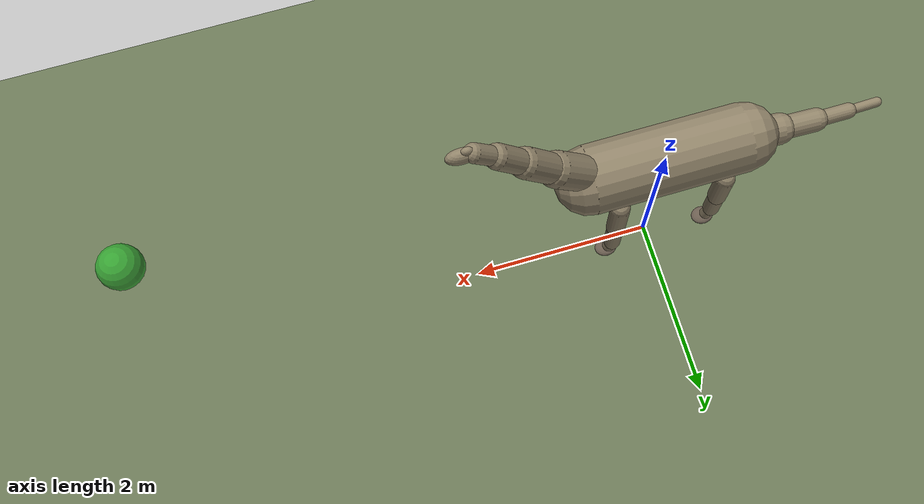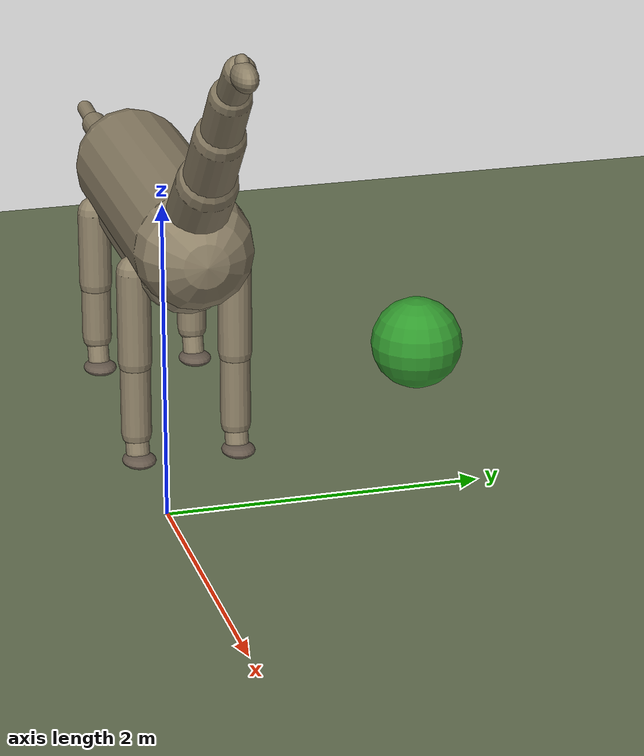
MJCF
<mujoco model="brachiosaurus">
  <compiler angle="degree" autolimits="true"/>

  <option timestep="0.002" gravity="0 0 -9.81" integrator="implicitfast">
    <flag warmstart="enable"/>
  </option>

  <default>
    <joint limited="true" damping="10.0" armature="0.05"/>
    <geom contype="1" conaffinity="1" friction="1.2 0.005 0.0001"/>
    <motor ctrllimited="true" ctrlrange="-1 1"/>

    <default class="leg_joint">
      <joint damping="35.0" stiffness="120.0" armature="0.1"/>
    </default>

    <!-- Metatarsal joints: semi-digitigrade stance -->
    <default class="meta_joint">
      <joint damping="25.0" stiffness="80.0" armature="0.08"/>
    </default>

    <!-- Neck joints: passive stiffness to counteract gravity on heavy neck.
         Increased from 30 to 50 to prevent neck collapse during locomotion. -->
    <default class="neck_joint">
      <joint damping="12.0" stiffness="50.0" armature="0.05" range="-25 25"/>
    </default>

    <!-- Tail joints: increased stiffness/damping for active control.
         Proximal segments actuated; distal remain passive. -->
    <default class="tail_joint">
      <joint damping="15.0" stiffness="30.0" armature="0.04" range="-15 25"/>
    </default>
  </default>

  <asset>
    <texture type="skybox" builtin="gradient" rgb1="0.6 0.8 1.0" rgb2="0.2 0.4 0.6"
             width="256" height="256"/>
    <texture name="grid" type="2d" builtin="checker" rgb1="0.45 0.5 0.35" rgb2="0.35 0.4 0.3"
             width="512" height="512"/>
    <material name="grid_mat" texture="grid" texrepeat="8 8" reflectance="0.1"/>
    <material name="body_mat" rgba="0.55 0.5 0.4 1"/>
    <material name="belly_mat" rgba="0.6 0.55 0.45 1"/>
    <material name="foot_mat" rgba="0.4 0.35 0.3 1"/>
  </asset>

  <worldbody>
    <!-- Ground plane -->
    <geom name="floor" type="plane" size="100 100 0.1" material="grid_mat"
          conaffinity="1" contype="1"/>

    <!-- Food target (mocap body - can be repositioned) -->
    <body name="food" mocap="true" pos="5 0 3.0">
      <geom name="food_geom" type="sphere" size="0.2" rgba="0.2 0.7 0.2 0.8"
            contype="2" conaffinity="2"/>
    </body>

    <!-- ==================== BRACHIOSAURUS BODY ==================== -->

    <body name="torso" pos="0 0 2.0">
      <freejoint name="root"/>

      <!-- Main torso: barrel-shaped body -->
      <geom name="torso_main" type="capsule" fromto="-0.8 0 0  0.8 0 0" size="0.35"
            mass="60.0" material="body_mat"/>

      <!-- Belly (cosmetic, adds mass lower) -->
      <geom name="belly" type="capsule" fromto="-0.6 0 -0.15  0.6 0 -0.15" size="0.3"
            mass="20.0" material="belly_mat"/>

      <!-- IMU sensor site -->
      <site name="imu" pos="0 0 0" size="0.03"/>

      <!-- ==================== NECK ==================== -->
      <!-- 4 segments, angled upward (Brachiosaurus had a steep neck angle) -->

      <body name="neck_1" pos="0.8 0 0.15">
        <joint name="neck_1_pitch" class="neck_joint" type="hinge" axis="0 1 0" range="-20 30"/>
        <joint name="neck_1_yaw" class="neck_joint" type="hinge" axis="0 0 1" range="-15 15"/>
        <geom name="neck_1_geom" type="capsule" fromto="0 0 0  0.35 0 0.35" size="0.18"
              mass="8.0" material="body_mat" contype="0" conaffinity="0"/>

        <body name="neck_2" pos="0.35 0 0.35">
          <joint name="neck_2_pitch" class="neck_joint" type="hinge" axis="0 1 0" range="-20 25"/>
          <geom name="neck_2_geom" type="capsule" fromto="0 0 0  0.3 0 0.35" size="0.15"
                mass="6.0" material="body_mat" contype="0" conaffinity="0"/>

          <body name="neck_3" pos="0.3 0 0.35">
            <joint name="neck_3_pitch" class="neck_joint" type="hinge" axis="0 1 0" range="-25 25"/>
            <geom name="neck_3_geom" type="capsule" fromto="0 0 0  0.25 0 0.3" size="0.12"
                  mass="4.0" material="body_mat" contype="0" conaffinity="0"/>

            <body name="neck_4" pos="0.25 0 0.3">
              <joint name="neck_4_pitch" class="neck_joint" type="hinge" axis="0 1 0" range="-30 30"/>
              <geom name="neck_4_geom" type="capsule" fromto="0 0 0  0.2 0 0.2" size="0.09"
                    mass="2.5" material="body_mat" contype="0" conaffinity="0"/>

              <!-- Head -->
              <body name="head" pos="0.2 0 0.2">
                <joint name="head_pitch" class="neck_joint" type="hinge" axis="0 1 0" range="-40 40"/>
                <geom name="head_geom" type="ellipsoid" pos="0.1 0 0" size="0.15 0.07 0.08"
                      mass="1.5" material="body_mat"/>
                <!-- Nasal crest -->
                <geom name="crest" type="ellipsoid" pos="0.05 0 0.06" size="0.06 0.04 0.05"
                      mass="0.3" material="body_mat" contype="0" conaffinity="0"/>
                <!-- Head tip site for food reaching detection -->
                <site name="head_tip" pos="0.2 0 0" size="0.02"/>
              </body>
            </body>
          </body>
        </body>
      </body>

      <!-- ==================== TAIL ==================== -->
      <!-- 4 segments, relatively short for a sauropod -->

      <body name="tail_1" pos="-0.8 0 0">
        <joint name="tail_1_pitch" class="tail_joint" type="hinge" axis="0 1 0"/>
        <joint name="tail_1_yaw" class="tail_joint" type="hinge" axis="0 0 1" range="-10 10"/>
        <geom name="tail_1_geom" type="capsule" fromto="0 0 0  -0.4 0 -0.05" size="0.16"
              mass="6.0" material="body_mat"/>

        <body name="tail_2" pos="-0.4 0 -0.05">
          <joint name="tail_2_pitch" class="tail_joint" type="hinge" axis="0 1 0"/>
          <geom name="tail_2_geom" type="capsule" fromto="0 0 0  -0.4 0 -0.03" size="0.12"
                mass="4.0" material="body_mat"/>

          <body name="tail_3" pos="-0.4 0 -0.03">
            <joint name="tail_3_pitch" class="tail_joint" type="hinge" axis="0 1 0"/>
            <geom name="tail_3_geom" type="capsule" fromto="0 0 0  -0.35 0 0" size="0.08"
                  mass="2.0" material="body_mat"/>

            <body name="tail_4" pos="-0.35 0 0">
              <joint name="tail_4_pitch" class="tail_joint" type="hinge" axis="0 1 0"/>
              <geom name="tail_4_geom" type="capsule" fromto="0 0 0  -0.3 0 0.02" size="0.05"
                    mass="1.0" material="body_mat"/>
              <site name="tail_tip" pos="-0.3 0 0.02" size="0.02"/>
            </body>
          </body>
        </body>
      </body>

      <!-- ==================== FRONT RIGHT LEG ==================== -->
      <!-- Brachiosaurus front legs are longer than rear (unique feature) -->
      <!-- Semi-digitigrade stance: metacarpals held sub-vertically with
           a fleshy pad at the base. The manus is compact (short metacarpal). -->

      <body name="fr_thigh" pos="0.55 -0.3 -0.2">
        <joint name="fr_hip_pitch" class="leg_joint" type="hinge" axis="0 1 0" range="-40 50"/>
        <joint name="fr_hip_roll" class="leg_joint" type="hinge" axis="1 0 0" range="-10 10"/>
        <geom name="fr_thigh_geom" type="capsule" fromto="0 0 0  0 0 -0.55" size="0.1"
              mass="8.0" material="body_mat"/>

        <body name="fr_shin" pos="0 0 -0.55">
          <joint name="fr_knee" class="leg_joint" type="hinge" axis="0 1 0" range="-60 0" springref="-45"/>
          <geom name="fr_shin_geom" type="capsule" fromto="0 0 0  0 0 -0.45" size="0.09"
                mass="5.0" material="body_mat"/>

          <!-- Metacarpus: short, sub-vertical (sauropod manus was compact) -->
          <body name="fr_meta" pos="0 0 -0.45">
            <joint name="fr_ankle" class="meta_joint" type="hinge" axis="0 1 0" range="-20 40" springref="20"/>
            <geom name="fr_meta_geom" type="capsule" fromto="0 0 0  0.03 0 -0.12" size="0.07"
                  mass="1.5" material="body_mat"/>
            <site name="fr_meta_contact" type="box" pos="0.03 0 -0.14" size="0.11 0.10 0.06" group="4"/>

            <!-- Foot pad: fleshy digital pad at ground contact -->
            <body name="fr_foot" pos="0.03 0 -0.12">
              <joint name="fr_toe" class="meta_joint" type="hinge" axis="0 1 0" range="-15 25" springref="5.7"/>
              <geom name="fr_foot_geom" type="ellipsoid" pos="0.03 0 -0.03" size="0.12 0.1 0.04"
                    mass="1.5" material="foot_mat"/>
              <site name="fr_foot_contact" type="box" pos="0.03 0 -0.05" size="0.14 0.12 0.035" group="4"/>
            </body>
          </body>
        </body>
      </body>

      <!-- ==================== FRONT LEFT LEG ==================== -->

      <body name="fl_thigh" pos="0.55 0.3 -0.2">
        <joint name="fl_hip_pitch" class="leg_joint" type="hinge" axis="0 1 0" range="-40 50"/>
        <joint name="fl_hip_roll" class="leg_joint" type="hinge" axis="1 0 0" range="-10 10"/>
        <geom name="fl_thigh_geom" type="capsule" fromto="0 0 0  0 0 -0.55" size="0.1"
              mass="8.0" material="body_mat"/>

        <body name="fl_shin" pos="0 0 -0.55">
          <joint name="fl_knee" class="leg_joint" type="hinge" axis="0 1 0" range="-60 0" springref="-45"/>
          <geom name="fl_shin_geom" type="capsule" fromto="0 0 0  0 0 -0.45" size="0.09"
                mass="5.0" material="body_mat"/>

          <body name="fl_meta" pos="0 0 -0.45">
            <joint name="fl_ankle" class="meta_joint" type="hinge" axis="0 1 0" range="-20 40" springref="20"/>
            <geom name="fl_meta_geom" type="capsule" fromto="0 0 0  0.03 0 -0.12" size="0.07"
                  mass="1.5" material="body_mat"/>
            <site name="fl_meta_contact" type="box" pos="0.03 0 -0.14" size="0.11 0.10 0.06" group="4"/>

            <body name="fl_foot" pos="0.03 0 -0.12">
              <joint name="fl_toe" class="meta_joint" type="hinge" axis="0 1 0" range="-15 25" springref="5.7"/>
              <geom name="fl_foot_geom" type="ellipsoid" pos="0.03 0 -0.03" size="0.12 0.1 0.04"
                    mass="1.5" material="foot_mat"/>
              <site name="fl_foot_contact" type="box" pos="0.03 0 -0.05" size="0.14 0.12 0.035" group="4"/>
            </body>
          </body>
        </body>
      </body>

      <!-- ==================== REAR RIGHT LEG ==================== -->
      <!-- Rear legs shorter than front (characteristic of Brachiosaurus) -->
      <!-- Semi-digitigrade stance: metatarsals longer than front metacarpals -->

      <body name="rr_thigh" pos="-0.55 -0.3 -0.2">
        <joint name="rr_hip_pitch" class="leg_joint" type="hinge" axis="0 1 0" range="-40 50"/>
        <joint name="rr_hip_roll" class="leg_joint" type="hinge" axis="1 0 0" range="-10 10"/>
        <geom name="rr_thigh_geom" type="capsule" fromto="0 0 0  0 0 -0.45" size="0.1"
              mass="7.0" material="body_mat"/>

        <body name="rr_shin" pos="0 0 -0.45">
          <joint name="rr_knee" class="leg_joint" type="hinge" axis="0 1 0" range="-60 0" springref="-10"/>
          <geom name="rr_shin_geom" type="capsule" fromto="0 0 0  0 0 -0.35" size="0.09"
                mass="4.0" material="body_mat"/>

          <!-- Metatarsus: longer than front metacarpus (hind foot digitigrade) -->
          <body name="rr_meta" pos="0 0 -0.35">
            <joint name="rr_ankle" class="meta_joint" type="hinge" axis="0 1 0" range="-20 40" springref="20"/>
            <geom name="rr_meta_geom" type="capsule" fromto="0 0 0  0.04 0 -0.15" size="0.065"
                  mass="1.5" material="body_mat"/>
            <site name="rr_meta_contact" type="box" pos="0.04 0 -0.17" size="0.11 0.10 0.07" group="4"/>

            <body name="rr_foot" pos="0.04 0 -0.15">
              <joint name="rr_toe" class="meta_joint" type="hinge" axis="0 1 0" range="-15 25" springref="5.7"/>
              <geom name="rr_foot_geom" type="ellipsoid" pos="0.03 0 -0.03" size="0.12 0.1 0.04"
                    mass="1.5" material="foot_mat"/>
              <site name="rr_foot_contact" type="box" pos="0.03 0 -0.05" size="0.14 0.12 0.035" group="4"/>
            </body>
          </body>
        </body>
      </body>

      <!-- ==================== REAR LEFT LEG ==================== -->

      <body name="rl_thigh" pos="-0.55 0.3 -0.2">
        <joint name="rl_hip_pitch" class="leg_joint" type="hinge" axis="0 1 0" range="-40 50"/>
        <joint name="rl_hip_roll" class="leg_joint" type="hinge" axis="1 0 0" range="-10 10"/>
        <geom name="rl_thigh_geom" type="capsule" fromto="0 0 0  0 0 -0.45" size="0.1"
              mass="7.0" material="body_mat"/>

        <body name="rl_shin" pos="0 0 -0.45">
          <joint name="rl_knee" class="leg_joint" type="hinge" axis="0 1 0" range="-60 0" springref="-10"/>
          <geom name="rl_shin_geom" type="capsule" fromto="0 0 0  0 0 -0.35" size="0.09"
                mass="4.0" material="body_mat"/>

          <body name="rl_meta" pos="0 0 -0.35">
            <joint name="rl_ankle" class="meta_joint" type="hinge" axis="0 1 0" range="-20 40" springref="20"/>
            <geom name="rl_meta_geom" type="capsule" fromto="0 0 0  0.04 0 -0.15" size="0.065"
                  mass="1.5" material="body_mat"/>
            <site name="rl_meta_contact" type="box" pos="0.04 0 -0.17" size="0.11 0.10 0.07" group="4"/>

            <body name="rl_foot" pos="0.04 0 -0.15">
              <joint name="rl_toe" class="meta_joint" type="hinge" axis="0 1 0" range="-15 25" springref="5.7"/>
              <geom name="rl_foot_geom" type="ellipsoid" pos="0.03 0 -0.03" size="0.12 0.1 0.04"
                    mass="1.5" material="foot_mat"/>
              <site name="rl_foot_contact" type="box" pos="0.03 0 -0.05" size="0.14 0.12 0.035" group="4"/>
            </body>
          </body>
        </body>
      </body>

    </body> <!-- end torso -->
  </worldbody>

  <!-- ==================== ACTUATORS ==================== -->
  <!-- Position actuators for locomotion, high kp for heavy body -->

  <actuator>
    <!-- NOTE: ctrlrange must be in radians — the compiler angle="degree" setting
         does NOT convert actuator attributes, only joint attributes. -->

    <!-- Neck control (5 joints: 4 pitch + 1 yaw on base) -->
    <position name="neck_1_pitch_act" joint="neck_1_pitch" kp="240" forcerange="-160 160" ctrlrange="-0.3491 0.5236"/>
    <position name="neck_1_yaw_act" joint="neck_1_yaw" kp="160" forcerange="-110 110" ctrlrange="-0.2618 0.2618"/>
    <position name="neck_2_pitch_act" joint="neck_2_pitch" kp="200" forcerange="-140 140" ctrlrange="-0.3491 0.4363"/>
    <position name="neck_3_pitch_act" joint="neck_3_pitch" kp="160" forcerange="-110 110" ctrlrange="-0.4363 0.4363"/>
    <position name="neck_4_pitch_act" joint="neck_4_pitch" kp="120" forcerange="-80 80" ctrlrange="-0.5236 0.5236"/>
    <position name="head_pitch_act" joint="head_pitch" kp="80" forcerange="-55 55" ctrlrange="-0.6981 0.6981"/>

    <!-- Front right leg (5 actuators: hip pitch/roll, knee, ankle, toe) -->
    <position name="fr_hip_pitch_act" joint="fr_hip_pitch" kp="1200" forcerange="-1800 1800" ctrlrange="-0.6981 0.8727"/>
    <position name="fr_hip_roll_act" joint="fr_hip_roll" kp="600" forcerange="-400 400" ctrlrange="-0.1745 0.1745"/>
    <position name="fr_knee_act" joint="fr_knee" kp="1600" forcerange="-1000 1000" ctrlrange="-1.0472 0"/>
    <position name="fr_ankle_act" joint="fr_ankle" kp="700" forcerange="-500 500" ctrlrange="-0.3491 0.6981"/>
    <position name="fr_toe_act" joint="fr_toe" kp="300" forcerange="-200 200" ctrlrange="-0.2618 0.4363"/>

    <!-- Front left leg -->
    <position name="fl_hip_pitch_act" joint="fl_hip_pitch" kp="1200" forcerange="-1800 1800" ctrlrange="-0.6981 0.8727"/>
    <position name="fl_hip_roll_act" joint="fl_hip_roll" kp="600" forcerange="-400 400" ctrlrange="-0.1745 0.1745"/>
    <position name="fl_knee_act" joint="fl_knee" kp="1600" forcerange="-1000 1000" ctrlrange="-1.0472 0"/>
    <position name="fl_ankle_act" joint="fl_ankle" kp="700" forcerange="-500 500" ctrlrange="-0.3491 0.6981"/>
    <position name="fl_toe_act" joint="fl_toe" kp="300" forcerange="-200 200" ctrlrange="-0.2618 0.4363"/>

    <!-- Rear right leg -->
    <position name="rr_hip_pitch_act" joint="rr_hip_pitch" kp="1100" forcerange="-1650 1650" ctrlrange="-0.6981 0.8727"/>
    <position name="rr_hip_roll_act" joint="rr_hip_roll" kp="520" forcerange="-360 360" ctrlrange="-0.1745 0.1745"/>
    <position name="rr_knee_act" joint="rr_knee" kp="1400" forcerange="-900 900" ctrlrange="-1.0472 0"/>
    <position name="rr_ankle_act" joint="rr_ankle" kp="600" forcerange="-440 440" ctrlrange="-0.3491 0.6981"/>
    <position name="rr_toe_act" joint="rr_toe" kp="300" forcerange="-200 200" ctrlrange="-0.2618 0.4363"/>

    <!-- Rear left leg -->
    <position name="rl_hip_pitch_act" joint="rl_hip_pitch" kp="1100" forcerange="-1650 1650" ctrlrange="-0.6981 0.8727"/>
    <position name="rl_hip_roll_act" joint="rl_hip_roll" kp="520" forcerange="-360 360" ctrlrange="-0.1745 0.1745"/>
    <position name="rl_knee_act" joint="rl_knee" kp="1400" forcerange="-900 900" ctrlrange="-1.0472 0"/>
    <position name="rl_ankle_act" joint="rl_ankle" kp="600" forcerange="-440 440" ctrlrange="-0.3491 0.6981"/>
    <position name="rl_toe_act" joint="rl_toe" kp="300" forcerange="-200 200" ctrlrange="-0.2618 0.4363"/>

    <!-- Tail actuators for active balance control (match T-Rex/Raptor pattern:
         actuate proximal segments, leave distal tail_4 passive) -->
    <position name="tail_1_pitch_act" joint="tail_1_pitch" kp="100" forcerange="-70 70" ctrlrange="-0.2618 0.4363"/>
    <position name="tail_1_yaw_act" joint="tail_1_yaw" kp="80" forcerange="-55 55" ctrlrange="-0.1745 0.1745"/>
    <position name="tail_2_pitch_act" joint="tail_2_pitch" kp="80" forcerange="-55 55" ctrlrange="-0.2618 0.4363"/>
    <position name="tail_3_pitch_act" joint="tail_3_pitch" kp="60" forcerange="-40 40" ctrlrange="-0.2618 0.4363"/>
  </actuator>

  <!-- ==================== SENSORS ==================== -->

  <sensor>
    <!-- IMU-like sensors on torso -->
    <gyro name="torso_gyro" site="imu"/>
    <accelerometer name="torso_accel" site="imu"/>
    <framequat name="torso_orientation" objtype="site" objname="imu"/>

    <!-- Foot contact forces (4 feet) -->
    <touch name="fr_foot_touch" site="fr_foot_contact"/>
    <touch name="fl_foot_touch" site="fl_foot_contact"/>
    <touch name="rr_foot_touch" site="rr_foot_contact"/>
    <touch name="rl_foot_touch" site="rl_foot_contact"/>

    <!-- Head tip position (for food reaching) -->
    <framepos name="head_tip_pos" objtype="site" objname="head_tip"/>

    <!-- Tail tip for stability monitoring -->
    <framepos name="tail_tip_pos" objtype="site" objname="tail_tip"/>
    <velocimeter name="tail_tip_linvel" site="tail_tip"/>
    <gyro name="tail_tip_angvel" site="tail_tip"/>

    <touch name="fr_meta_touch" site="fr_meta_contact"/>
    <touch name="fl_meta_touch" site="fl_meta_contact"/>
    <touch name="rr_meta_touch" site="rr_meta_contact"/>
    <touch name="rl_meta_touch" site="rl_meta_contact"/>
  </sensor>

  <!-- ==================== CONTACT EXCLUSIONS ==================== -->

  <contact>
    <!-- Neck chain -->
    <exclude body1="torso" body2="neck_1"/>
    <exclude body1="neck_1" body2="neck_2"/>
    <exclude body1="neck_2" body2="neck_3"/>
    <exclude body1="neck_3" body2="neck_4"/>
    <exclude body1="neck_4" body2="head"/>

    <exclude body1="torso" body2="tail_1"/>
    <exclude body1="torso" body2="tail_2"/>
    <exclude body1="tail_1" body2="tail_2"/>
    <exclude body1="tail_2" body2="tail_3"/>
    <exclude body1="tail_3" body2="tail_4"/>

    <!-- Thigh-torso -->
    <exclude body1="torso" body2="fr_thigh"/>
    <exclude body1="torso" body2="fl_thigh"/>
    <exclude body1="torso" body2="rr_thigh"/>
    <exclude body1="torso" body2="rl_thigh"/>

    <!-- Shin-metatarsal chain -->
    <exclude body1="fr_shin" body2="fr_meta"/>
    <exclude body1="fl_shin" body2="fl_meta"/>
    <exclude body1="rr_shin" body2="rr_meta"/>
    <exclude body1="rl_shin" body2="rl_meta"/>
    <exclude body1="fr_meta" body2="fr_foot"/>
    <exclude body1="fl_meta" body2="fl_foot"/>
    <exclude body1="rr_meta" body2="rr_foot"/>
    <exclude body1="rl_meta" body2="rl_foot"/>
  </contact>

  <!-- ==================== KEYFRAMES ==================== -->

  <keyframe>
    <key name="home"
         qpos="0 0 1.20 1 0 0 0
               0 0 0 0 0 0
               0 0 0 0 0
               0 0 -0.7854 0.35 0.1
               0 0 -0.7854 0.35 0.1
               0 0 -0.1745 0.35 0.1
               0 0 -0.1745 0.35 0.1"
         ctrl="0 0 0 0 0 0
               0 0 -0.7854 0.35 0.1
               0 0 -0.7854 0.35 0.1
               0 0 -0.1745 0.35 0.1
               0 0 -0.1745 0.35 0.1
               0 0 0 0"/>
  </keyframe>

</mujoco>
